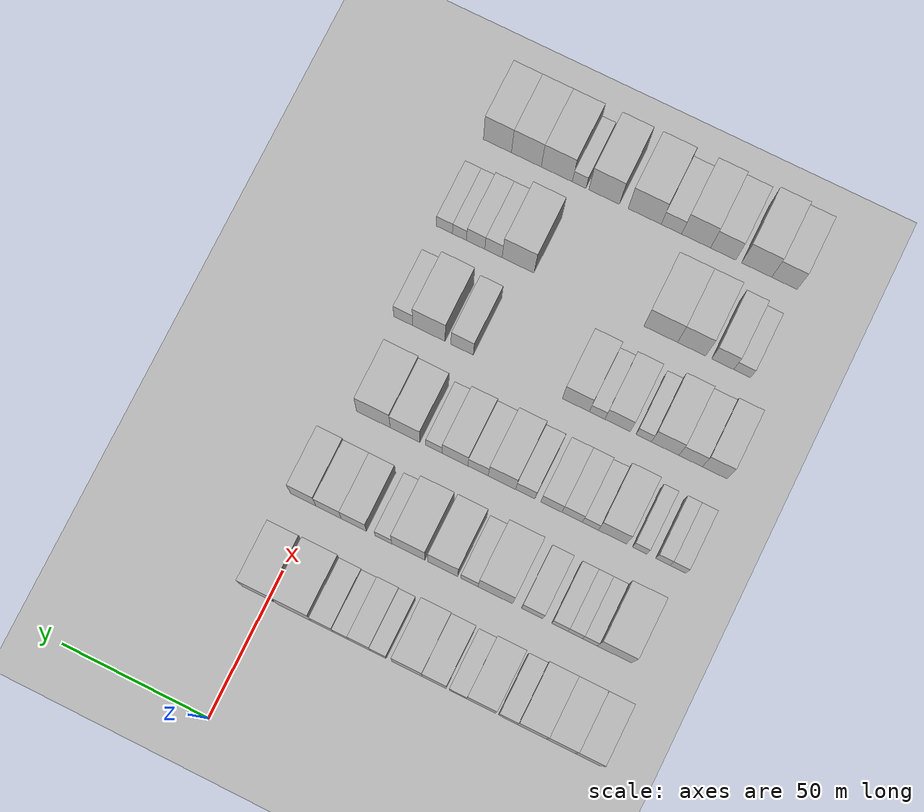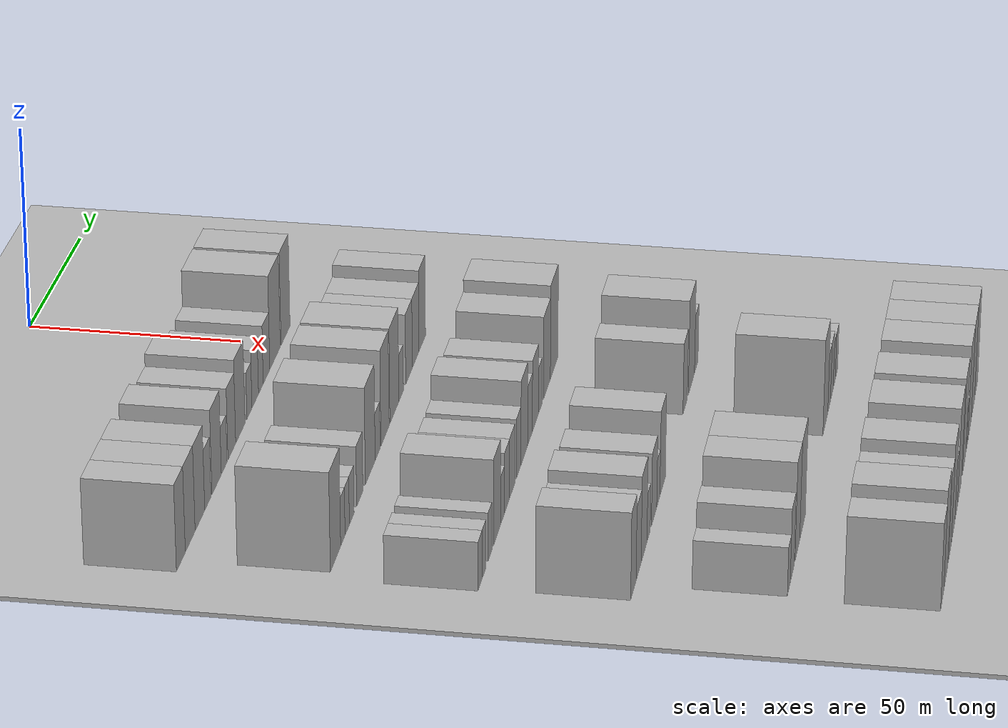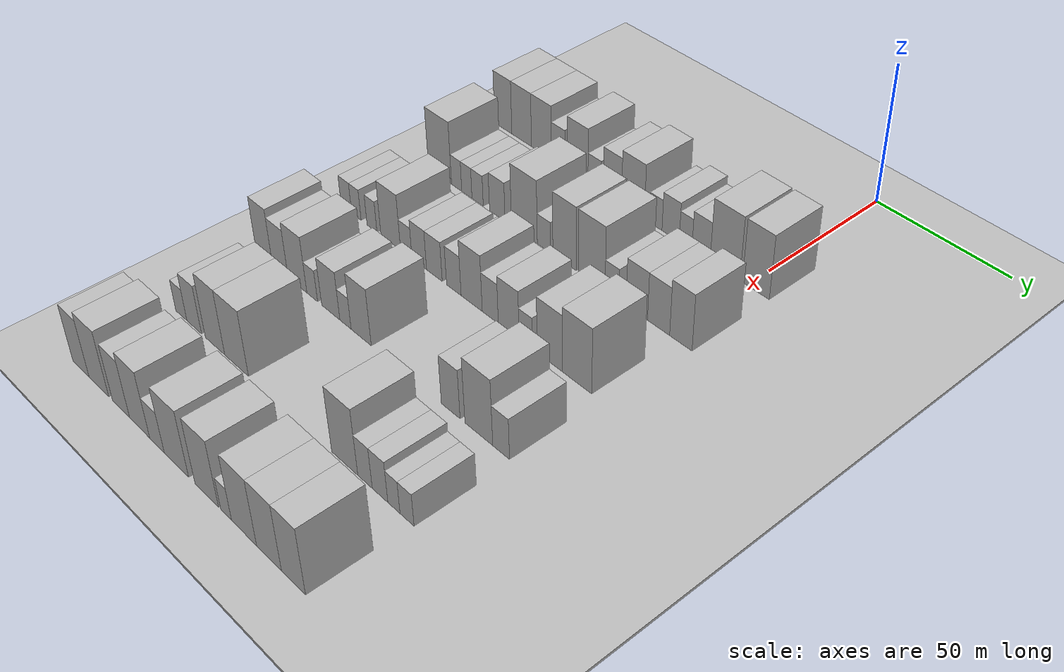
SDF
<sdf version="1.6">
 <world name="default">
  <include><name>ground_plane_1</name><uri>model://HANNAS_ground_plane</uri></include>
  <include>
   <name>ground_plane_2</name>
   <uri>model://HANNAS_ground_plane</uri>
   <pose>100 0 0  0 0 0</pose>
  </include>
  <model name="building_51">
   <static>1</static>
   <pose>50.0000 -108.0668 0 0.000000 0.000000 0.000000</pose>
   <link name="link">
    <pose>0 0 10.50 0 0 0</pose>
    <collision name="collision"><geometry><box><size>20.0000 8.6286 21.0000</size></box></geometry></collision>
    <visual name="visual">
     <cast_shadows>0</cast_shadows>
     <geometry><box><size>20.0000 8.6286 21.0000</size></box></geometry>
     <material>
      <script>
       <uri>model://HANNAS_wall/materials/scripts</uri>
       <uri>model://HANNAS_wall/materials/textures</uri>
       <name>vrc/HANNAS_wall</name>
      </script>
     </material>
    </visual>
   </link>
  </model>
  <model name="building_52">
   <static>1</static>
   <pose>50.0000 -98.9195 0 0.000000 0.000000 0.000000</pose>
   <link name="link">
    <pose>0 0 10.50 0 0 0</pose>
    <collision name="collision"><geometry><box><size>20.0000 9.6658 21.0000</size></box></geometry></collision>
    <visual name="visual">
     <cast_shadows>0</cast_shadows>
     <geometry><box><size>20.0000 9.6658 21.0000</size></box></geometry>
     <material>
      <script>
       <uri>model://HANNAS_wall/materials/scripts</uri>
       <uri>model://HANNAS_wall/materials/textures</uri>
       <name>vrc/HANNAS_wall</name>
      </script>
     </material>
    </visual>
   </link>
  </model>
  <model name="building_53">
   <static>1</static>
   <pose>50.0000 -89.2498 0 0.000000 0.000000 0.000000</pose>
   <link name="link">
    <pose>0 0 10.50 0 0 0</pose>
    <collision name="collision"><geometry><box><size>20.0000 9.6736 21.0000</size></box></geometry></collision>
    <visual name="visual">
     <cast_shadows>0</cast_shadows>
     <geometry><box><size>20.0000 9.6736 21.0000</size></box></geometry>
     <material>
      <script>
       <uri>model://HANNAS_wall/materials/scripts</uri>
       <uri>model://HANNAS_wall/materials/textures</uri>
       <name>vrc/HANNAS_wall</name>
      </script>
     </material>
    </visual>
   </link>
  </model>
  <model name="building_54">
   <static>1</static>
   <pose>50.0000 -81.2401 0 0.000000 0.000000 0.000000</pose>
   <link name="link">
    <pose>0 0 7.50 0 0 0</pose>
    <collision name="collision"><geometry><box><size>20.0000 6.3459 15.0000</size></box></geometry></collision>
    <visual name="visual">
     <cast_shadows>0</cast_shadows>
     <geometry><box><size>20.0000 6.3459 15.0000</size></box></geometry>
     <material>
      <script>
       <uri>model://HANNAS_wall/materials/scripts</uri>
       <uri>model://HANNAS_wall/materials/textures</uri>
       <name>vrc/HANNAS_wall</name>
      </script>
     </material>
    </visual>
   </link>
  </model>
  <model name="building_55">
   <static>1</static>
   <pose>50.0000 -72.2254 0 0.000000 0.000000 0.000000</pose>
   <link name="link">
    <pose>0 0 10.50 0 0 0</pose>
    <collision name="collision"><geometry><box><size>20.0000 9.6835 21.0000</size></box></geometry></collision>
    <visual name="visual">
     <cast_shadows>0</cast_shadows>
     <geometry><box><size>20.0000 9.6835 21.0000</size></box></geometry>
     <material>
      <script>
       <uri>model://HANNAS_wall/materials/scripts</uri>
       <uri>model://HANNAS_wall/materials/textures</uri>
       <name>vrc/HANNAS_wall</name>
      </script>
     </material>
    </visual>
   </link>
  </model>
  <model name="building_56">
   <static>1</static>
   <pose>50.0000 -64.3961 0 0.000000 0.000000 0.000000</pose>
   <link name="link">
    <pose>0 0 6.00 0 0 0</pose>
    <collision name="collision"><geometry><box><size>20.0000 5.9749 12.0000</size></box></geometry></collision>
    <visual name="visual">
     <cast_shadows>0</cast_shadows>
     <geometry><box><size>20.0000 5.9749 12.0000</size></box></geometry>
     <material>
      <script>
       <uri>model://HANNAS_wall/materials/scripts</uri>
       <uri>model://HANNAS_wall/materials/textures</uri>
       <name>vrc/HANNAS_wall</name>
      </script>
     </material>
    </visual>
   </link>
  </model>
  <model name="building_57">
   <static>1</static>
   <pose>50.0000 -56.3143 0 0.000000 0.000000 0.000000</pose>
   <link name="link">
    <pose>0 0 9.00 0 0 0</pose>
    <collision name="collision"><geometry><box><size>20.0000 8.1887 18.0000</size></box></geometry></collision>
    <visual name="visual">
     <cast_shadows>0</cast_shadows>
     <geometry><box><size>20.0000 8.1887 18.0000</size></box></geometry>
     <material>
      <script>
       <uri>model://HANNAS_wall/materials/scripts</uri>
       <uri>model://HANNAS_wall/materials/textures</uri>
       <name>vrc/HANNAS_wall</name>
      </script>
     </material>
    </visual>
   </link>
  </model>
  <model name="building_58">
   <static>1</static>
   <pose>50.0000 -47.1864 0 0.000000 0.000000 0.000000</pose>
   <link name="link">
    <pose>0 0 10.50 0 0 0</pose>
    <collision name="collision"><geometry><box><size>20.0000 10.0670 21.0000</size></box></geometry></collision>
    <visual name="visual">
     <cast_shadows>0</cast_shadows>
     <geometry><box><size>20.0000 10.0670 21.0000</size></box></geometry>
     <material>
      <script>
       <uri>model://HANNAS_wall/materials/scripts</uri>
       <uri>model://HANNAS_wall/materials/textures</uri>
       <name>vrc/HANNAS_wall</name>
      </script>
     </material>
    </visual>
   </link>
  </model>
  <model name="building_59">
   <static>1</static>
   <pose>50.0000 -37.3761 0 0.000000 0.000000 0.000000</pose>
   <link name="link">
    <pose>0 0 6.00 0 0 0</pose>
    <collision name="collision"><geometry><box><size>20.0000 5.5536 12.0000</size></box></geometry></collision>
    <visual name="visual">
     <cast_shadows>0</cast_shadows>
     <geometry><box><size>20.0000 5.5536 12.0000</size></box></geometry>
     <material>
      <script>
       <uri>model://HANNAS_wall/materials/scripts</uri>
       <uri>model://HANNAS_wall/materials/textures</uri>
       <name>vrc/HANNAS_wall</name>
      </script>
     </material>
    </visual>
   </link>
  </model>
  <model name="building_60">
   <static>1</static>
   <pose>50.0000 -30.9612 0 0.000000 0.000000 0.000000</pose>
   <link name="link">
    <pose>0 0 7.50 0 0 0</pose>
    <collision name="collision"><geometry><box><size>20.0000 7.2762 15.0000</size></box></geometry></collision>
    <visual name="visual">
     <cast_shadows>0</cast_shadows>
     <geometry><box><size>20.0000 7.2762 15.0000</size></box></geometry>
     <material>
      <script>
       <uri>model://HANNAS_wall/materials/scripts</uri>
       <uri>model://HANNAS_wall/materials/textures</uri>
       <name>vrc/HANNAS_wall</name>
      </script>
     </material>
    </visual>
   </link>
  </model>
  <model name="building_61">
   <static>1</static>
   <pose>50.0000 -24.6825 0 0.000000 0.000000 0.000000</pose>
   <link name="link">
    <pose>0 0 6.00 0 0 0</pose>
    <collision name="collision"><geometry><box><size>20.0000 5.2811 12.0000</size></box></geometry></collision>
    <visual name="visual">
     <cast_shadows>0</cast_shadows>
     <geometry><box><size>20.0000 5.2811 12.0000</size></box></geometry>
     <material>
      <script>
       <uri>model://HANNAS_wall/materials/scripts</uri>
       <uri>model://HANNAS_wall/materials/textures</uri>
       <name>vrc/HANNAS_wall</name>
      </script>
     </material>
    </visual>
   </link>
  </model>
  <model name="building_62">
   <static>1</static>
   <pose>50.0000 -18.3314 0 0.000000 0.000000 0.000000</pose>
   <link name="link">
    <pose>0 0 7.50 0 0 0</pose>
    <collision name="collision"><geometry><box><size>20.0000 7.4210 15.0000</size></box></geometry></collision>
    <visual name="visual">
     <cast_shadows>0</cast_shadows>
     <geometry><box><size>20.0000 7.4210 15.0000</size></box></geometry>
     <material>
      <script>
       <uri>model://HANNAS_wall/materials/scripts</uri>
       <uri>model://HANNAS_wall/materials/textures</uri>
       <name>vrc/HANNAS_wall</name>
      </script>
     </material>
    </visual>
   </link>
  </model>
  <model name="building_63">
   <static>1</static>
   <pose>50.0000 -8.6685 0 0.000000 0.000000 0.000000</pose>
   <link name="link">
    <pose>0 0 12.00 0 0 0</pose>
    <collision name="collision"><geometry><box><size>20.0000 11.9050 24.0000</size></box></geometry></collision>
    <visual name="visual">
     <cast_shadows>0</cast_shadows>
     <geometry><box><size>20.0000 11.9050 24.0000</size></box></geometry>
     <material>
      <script>
       <uri>model://HANNAS_wall/materials/scripts</uri>
       <uri>model://HANNAS_wall/materials/textures</uri>
       <name>vrc/HANNAS_wall</name>
      </script>
     </material>
    </visual>
   </link>
  </model>
  <model name="building_64">
   <static>1</static>
   <pose>50.0000 3.5360 0 0.000000 0.000000 0.000000</pose>
   <link name="link">
    <pose>0 0 12.00 0 0 0</pose>
    <collision name="collision"><geometry><box><size>20.0000 10.5040 24.0000</size></box></geometry></collision>
    <visual name="visual">
     <cast_shadows>0</cast_shadows>
     <geometry><box><size>20.0000 10.5040 24.0000</size></box></geometry>
     <material>
      <script>
       <uri>model://HANNAS_wall/materials/scripts</uri>
       <uri>model://HANNAS_wall/materials/textures</uri>
       <name>vrc/HANNAS_wall</name>
      </script>
     </material>
    </visual>
   </link>
  </model>
  <model name="building_177">
   <static>1</static>
   <pose>82.0000 -101.6393 0 0.000000 0.000000 0.000000</pose>
   <link name="link">
    <pose>0 0 12.00 0 0 0</pose>
    <collision name="collision"><geometry><box><size>20.0000 11.4980 24.0000</size></box></geometry></collision>
    <visual name="visual">
     <cast_shadows>0</cast_shadows>
     <geometry><box><size>20.0000 11.4980 24.0000</size></box></geometry>
     <material>
      <script>
       <uri>model://HANNAS_wall/materials/scripts</uri>
       <uri>model://HANNAS_wall/materials/textures</uri>
       <name>vrc/HANNAS_wall</name>
      </script>
     </material>
    </visual>
   </link>
  </model>
  <model name="building_178">
   <static>1</static>
   <pose>82.0000 -93.3824 0 0.000000 0.000000 0.000000</pose>
   <link name="link">
    <pose>0 0 6.00 0 0 0</pose>
    <collision name="collision"><geometry><box><size>20.0000 5.0158 12.0000</size></box></geometry></collision>
    <visual name="visual">
     <cast_shadows>0</cast_shadows>
     <geometry><box><size>20.0000 5.0158 12.0000</size></box></geometry>
     <material>
      <script>
       <uri>model://HANNAS_wall/materials/scripts</uri>
       <uri>model://HANNAS_wall/materials/textures</uri>
       <name>vrc/HANNAS_wall</name>
      </script>
     </material>
    </visual>
   </link>
  </model>
  <model name="building_179">
   <static>1</static>
   <pose>82.0000 -88.3939 0 0.000000 0.000000 0.000000</pose>
   <link name="link">
    <pose>0 0 6.00 0 0 0</pose>
    <collision name="collision"><geometry><box><size>20.0000 4.9613 12.0000</size></box></geometry></collision>
    <visual name="visual">
     <cast_shadows>0</cast_shadows>
     <geometry><box><size>20.0000 4.9613 12.0000</size></box></geometry>
     <material>
      <script>
       <uri>model://HANNAS_wall/materials/scripts</uri>
       <uri>model://HANNAS_wall/materials/textures</uri>
       <name>vrc/HANNAS_wall</name>
      </script>
     </material>
    </visual>
   </link>
  </model>
  <model name="building_180">
   <static>1</static>
   <pose>82.0000 -83.2018 0 0.000000 0.000000 0.000000</pose>
   <link name="link">
    <pose>0 0 6.00 0 0 0</pose>
    <collision name="collision"><geometry><box><size>20.0000 5.4230 12.0000</size></box></geometry></collision>
    <visual name="visual">
     <cast_shadows>0</cast_shadows>
     <geometry><box><size>20.0000 5.4230 12.0000</size></box></geometry>
     <material>
      <script>
       <uri>model://HANNAS_wall/materials/scripts</uri>
       <uri>model://HANNAS_wall/materials/textures</uri>
       <name>vrc/HANNAS_wall</name>
      </script>
     </material>
    </visual>
   </link>
  </model>
  <model name="building_181">
   <static>1</static>
   <pose>82.0000 -73.8542 0 0.000000 0.000000 0.000000</pose>
   <link name="link">
    <pose>0 0 7.50 0 0 0</pose>
    <collision name="collision"><geometry><box><size>20.0000 7.2721 15.0000</size></box></geometry></collision>
    <visual name="visual">
     <cast_shadows>0</cast_shadows>
     <geometry><box><size>20.0000 7.2721 15.0000</size></box></geometry>
     <material>
      <script>
       <uri>model://HANNAS_wall/materials/scripts</uri>
       <uri>model://HANNAS_wall/materials/textures</uri>
       <name>vrc/HANNAS_wall</name>
      </script>
     </material>
    </visual>
   </link>
  </model>
  <model name="building_182">
   <static>1</static>
   <pose>82.0000 -61.3323 0 0.000000 0.000000 0.000000</pose>
   <link name="link">
    <pose>0 0 12.00 0 0 0</pose>
    <collision name="collision"><geometry><box><size>20.0000 11.7718 24.0000</size></box></geometry></collision>
    <visual name="visual">
     <cast_shadows>0</cast_shadows>
     <geometry><box><size>20.0000 11.7718 24.0000</size></box></geometry>
     <material>
      <script>
       <uri>model://HANNAS_wall/materials/scripts</uri>
       <uri>model://HANNAS_wall/materials/textures</uri>
       <name>vrc/HANNAS_wall</name>
      </script>
     </material>
    </visual>
   </link>
  </model>
  <model name="building_183">
   <static>1</static>
   <pose>82.0000 -52.4739 0 0.000000 0.000000 0.000000</pose>
   <link name="link">
    <pose>0 0 6.00 0 0 0</pose>
    <collision name="collision"><geometry><box><size>20.0000 5.9449 12.0000</size></box></geometry></collision>
    <visual name="visual">
     <cast_shadows>0</cast_shadows>
     <geometry><box><size>20.0000 5.9449 12.0000</size></box></geometry>
     <material>
      <script>
       <uri>model://HANNAS_wall/materials/scripts</uri>
       <uri>model://HANNAS_wall/materials/textures</uri>
       <name>vrc/HANNAS_wall</name>
      </script>
     </material>
    </visual>
   </link>
  </model>
  <model name="building_184">
   <static>1</static>
   <pose>82.0000 -43.4128 0 0.000000 0.000000 0.000000</pose>
   <link name="link">
    <pose>0 0 12.00 0 0 0</pose>
    <collision name="collision"><geometry><box><size>20.0000 10.1772 24.0000</size></box></geometry></collision>
    <visual name="visual">
     <cast_shadows>0</cast_shadows>
     <geometry><box><size>20.0000 10.1772 24.0000</size></box></geometry>
     <material>
      <script>
       <uri>model://HANNAS_wall/materials/scripts</uri>
       <uri>model://HANNAS_wall/materials/textures</uri>
       <name>vrc/HANNAS_wall</name>
      </script>
     </material>
    </visual>
   </link>
  </model>
  <model name="building_185">
   <static>1</static>
   <pose>82.0000 -31.6812 0 0.000000 0.000000 0.000000</pose>
   <link name="link">
    <pose>0 0 12.00 0 0 0</pose>
    <collision name="collision"><geometry><box><size>20.0000 11.2860 24.0000</size></box></geometry></collision>
    <visual name="visual">
     <cast_shadows>0</cast_shadows>
     <geometry><box><size>20.0000 11.2860 24.0000</size></box></geometry>
     <material>
      <script>
       <uri>model://HANNAS_wall/materials/scripts</uri>
       <uri>model://HANNAS_wall/materials/textures</uri>
       <name>vrc/HANNAS_wall</name>
      </script>
     </material>
    </visual>
   </link>
  </model>
  <model name="building_186">
   <static>1</static>
   <pose>82.0000 -23.1558 0 0.000000 0.000000 0.000000</pose>
   <link name="link">
    <pose>0 0 6.00 0 0 0</pose>
    <collision name="collision"><geometry><box><size>20.0000 5.7648 12.0000</size></box></geometry></collision>
    <visual name="visual">
     <cast_shadows>0</cast_shadows>
     <geometry><box><size>20.0000 5.7648 12.0000</size></box></geometry>
     <material>
      <script>
       <uri>model://HANNAS_wall/materials/scripts</uri>
       <uri>model://HANNAS_wall/materials/textures</uri>
       <name>vrc/HANNAS_wall</name>
      </script>
     </material>
    </visual>
   </link>
  </model>
  <model name="building_187">
   <static>1</static>
   <pose>82.0000 -12.9511 0 0.000000 0.000000 0.000000</pose>
   <link name="link">
    <pose>0 0 9.00 0 0 0</pose>
    <collision name="collision"><geometry><box><size>20.0000 8.6446 18.0000</size></box></geometry></collision>
    <visual name="visual">
     <cast_shadows>0</cast_shadows>
     <geometry><box><size>20.0000 8.6446 18.0000</size></box></geometry>
     <material>
      <script>
       <uri>model://HANNAS_wall/materials/scripts</uri>
       <uri>model://HANNAS_wall/materials/textures</uri>
       <name>vrc/HANNAS_wall</name>
      </script>
     </material>
    </visual>
   </link>
  </model>
  <model name="building_188">
   <static>1</static>
   <pose>82.0000 -4.2556 0 0.000000 0.000000 0.000000</pose>
   <link name="link">
    <pose>0 0 9.00 0 0 0</pose>
    <collision name="collision"><geometry><box><size>20.0000 8.7465 18.0000</size></box></geometry></collision>
    <visual name="visual">
     <cast_shadows>0</cast_shadows>
     <geometry><box><size>20.0000 8.7465 18.0000</size></box></geometry>
     <material>
      <script>
       <uri>model://HANNAS_wall/materials/scripts</uri>
       <uri>model://HANNAS_wall/materials/textures</uri>
       <name>vrc/HANNAS_wall</name>
      </script>
     </material>
    </visual>
   </link>
  </model>
  <model name="building_189">
   <static>1</static>
   <pose>82.0000 4.4630 0 0.000000 0.000000 0.000000</pose>
   <link name="link">
    <pose>0 0 10.50 0 0 0</pose>
    <collision name="collision"><geometry><box><size>20.0000 8.6906 21.0000</size></box></geometry></collision>
    <visual name="visual">
     <cast_shadows>0</cast_shadows>
     <geometry><box><size>20.0000 8.6906 21.0000</size></box></geometry>
     <material>
      <script>
       <uri>model://HANNAS_wall/materials/scripts</uri>
       <uri>model://HANNAS_wall/materials/textures</uri>
       <name>vrc/HANNAS_wall</name>
      </script>
     </material>
    </visual>
   </link>
  </model>
  <model name="building_298">
   <static>1</static>
   <pose>114.0000 -107.8592 0 0.000000 0.000000 0.000000</pose>
   <link name="link">
    <pose>0 0 6.00 0 0 0</pose>
    <collision name="collision"><geometry><box><size>20.0000 5.3785 12.0000</size></box></geometry></collision>
    <visual name="visual">
     <cast_shadows>0</cast_shadows>
     <geometry><box><size>20.0000 5.3785 12.0000</size></box></geometry>
     <material>
      <script>
       <uri>model://HANNAS_wall/materials/scripts</uri>
       <uri>model://HANNAS_wall/materials/textures</uri>
       <name>vrc/HANNAS_wall</name>
      </script>
     </material>
    </visual>
   </link>
  </model>
  <model name="building_299">
   <static>1</static>
   <pose>114.0000 -102.7669 0 0.000000 0.000000 0.000000</pose>
   <link name="link">
    <pose>0 0 6.00 0 0 0</pose>
    <collision name="collision"><geometry><box><size>20.0000 4.8061 12.0000</size></box></geometry></collision>
    <visual name="visual">
     <cast_shadows>0</cast_shadows>
     <geometry><box><size>20.0000 4.8061 12.0000</size></box></geometry>
     <material>
      <script>
       <uri>model://HANNAS_wall/materials/scripts</uri>
       <uri>model://HANNAS_wall/materials/textures</uri>
       <name>vrc/HANNAS_wall</name>
      </script>
     </material>
    </visual>
   </link>
  </model>
  <model name="building_300">
   <static>1</static>
   <pose>114.0000 -94.9037 0 0.000000 0.000000 0.000000</pose>
   <link name="link">
    <pose>0 0 6.00 0 0 0</pose>
    <collision name="collision"><geometry><box><size>20.0000 4.9203 12.0000</size></box></geometry></collision>
    <visual name="visual">
     <cast_shadows>0</cast_shadows>
     <geometry><box><size>20.0000 4.9203 12.0000</size></box></geometry>
     <material>
      <script>
       <uri>model://HANNAS_wall/materials/scripts</uri>
       <uri>model://HANNAS_wall/materials/textures</uri>
       <name>vrc/HANNAS_wall</name>
      </script>
     </material>
    </visual>
   </link>
  </model>
  <model name="building_301">
   <static>1</static>
   <pose>114.0000 -85.6466 0 0.000000 0.000000 0.000000</pose>
   <link name="link">
    <pose>0 0 10.50 0 0 0</pose>
    <collision name="collision"><geometry><box><size>20.0000 9.5940 21.0000</size></box></geometry></collision>
    <visual name="visual">
     <cast_shadows>0</cast_shadows>
     <geometry><box><size>20.0000 9.5940 21.0000</size></box></geometry>
     <material>
      <script>
       <uri>model://HANNAS_wall/materials/scripts</uri>
       <uri>model://HANNAS_wall/materials/textures</uri>
       <name>vrc/HANNAS_wall</name>
      </script>
     </material>
    </visual>
   </link>
  </model>
  <model name="building_302">
   <static>1</static>
   <pose>114.0000 -78.1065 0 0.000000 0.000000 0.000000</pose>
   <link name="link">
    <pose>0 0 6.00 0 0 0</pose>
    <collision name="collision"><geometry><box><size>20.0000 5.4860 12.0000</size></box></geometry></collision>
    <visual name="visual">
     <cast_shadows>0</cast_shadows>
     <geometry><box><size>20.0000 5.4860 12.0000</size></box></geometry>
     <material>
      <script>
       <uri>model://HANNAS_wall/materials/scripts</uri>
       <uri>model://HANNAS_wall/materials/textures</uri>
       <name>vrc/HANNAS_wall</name>
      </script>
     </material>
    </visual>
   </link>
  </model>
  <model name="building_303">
   <static>1</static>
   <pose>114.0000 -71.9262 0 0.000000 0.000000 0.000000</pose>
   <link name="link">
    <pose>0 0 7.50 0 0 0</pose>
    <collision name="collision"><geometry><box><size>20.0000 6.8747 15.0000</size></box></geometry></collision>
    <visual name="visual">
     <cast_shadows>0</cast_shadows>
     <geometry><box><size>20.0000 6.8747 15.0000</size></box></geometry>
     <material>
      <script>
       <uri>model://HANNAS_wall/materials/scripts</uri>
       <uri>model://HANNAS_wall/materials/textures</uri>
       <name>vrc/HANNAS_wall</name>
      </script>
     </material>
    </visual>
   </link>
  </model>
  <model name="building_304">
   <static>1</static>
   <pose>114.0000 -64.8480 0 0.000000 0.000000 0.000000</pose>
   <link name="link">
    <pose>0 0 7.50 0 0 0</pose>
    <collision name="collision"><geometry><box><size>20.0000 7.2818 15.0000</size></box></geometry></collision>
    <visual name="visual">
     <cast_shadows>0</cast_shadows>
     <geometry><box><size>20.0000 7.2818 15.0000</size></box></geometry>
     <material>
      <script>
       <uri>model://HANNAS_wall/materials/scripts</uri>
       <uri>model://HANNAS_wall/materials/textures</uri>
       <name>vrc/HANNAS_wall</name>
      </script>
     </material>
    </visual>
   </link>
  </model>
  <model name="building_305">
   <static>1</static>
   <pose>114.0000 -55.9021 0 0.000000 0.000000 0.000000</pose>
   <link name="link">
    <pose>0 0 7.50 0 0 0</pose>
    <collision name="collision"><geometry><box><size>20.0000 6.6100 15.0000</size></box></geometry></collision>
    <visual name="visual">
     <cast_shadows>0</cast_shadows>
     <geometry><box><size>20.0000 6.6100 15.0000</size></box></geometry>
     <material>
      <script>
       <uri>model://HANNAS_wall/materials/scripts</uri>
       <uri>model://HANNAS_wall/materials/textures</uri>
       <name>vrc/HANNAS_wall</name>
      </script>
     </material>
    </visual>
   </link>
  </model>
  <model name="building_306">
   <static>1</static>
   <pose>114.0000 -47.8876 0 0.000000 0.000000 0.000000</pose>
   <link name="link">
    <pose>0 0 10.50 0 0 0</pose>
    <collision name="collision"><geometry><box><size>20.0000 9.4189 21.0000</size></box></geometry></collision>
    <visual name="visual">
     <cast_shadows>0</cast_shadows>
     <geometry><box><size>20.0000 9.4189 21.0000</size></box></geometry>
     <material>
      <script>
       <uri>model://HANNAS_wall/materials/scripts</uri>
       <uri>model://HANNAS_wall/materials/textures</uri>
       <name>vrc/HANNAS_wall</name>
      </script>
     </material>
    </visual>
   </link>
  </model>
  <model name="building_307">
   <static>1</static>
   <pose>114.0000 -39.6782 0 0.000000 0.000000 0.000000</pose>
   <link name="link">
    <pose>0 0 7.50 0 0 0</pose>
    <collision name="collision"><geometry><box><size>20.0000 6.9999 15.0000</size></box></geometry></collision>
    <visual name="visual">
     <cast_shadows>0</cast_shadows>
     <geometry><box><size>20.0000 6.9999 15.0000</size></box></geometry>
     <material>
      <script>
       <uri>model://HANNAS_wall/materials/scripts</uri>
       <uri>model://HANNAS_wall/materials/textures</uri>
       <name>vrc/HANNAS_wall</name>
      </script>
     </material>
    </visual>
   </link>
  </model>
  <model name="building_308">
   <static>1</static>
   <pose>114.0000 -31.7240 0 0.000000 0.000000 0.000000</pose>
   <link name="link">
    <pose>0 0 9.00 0 0 0</pose>
    <collision name="collision"><geometry><box><size>20.0000 8.9085 18.0000</size></box></geometry></collision>
    <visual name="visual">
     <cast_shadows>0</cast_shadows>
     <geometry><box><size>20.0000 8.9085 18.0000</size></box></geometry>
     <material>
      <script>
       <uri>model://HANNAS_wall/materials/scripts</uri>
       <uri>model://HANNAS_wall/materials/textures</uri>
       <name>vrc/HANNAS_wall</name>
      </script>
     </material>
    </visual>
   </link>
  </model>
  <model name="building_309">
   <static>1</static>
   <pose>114.0000 -24.4718 0 0.000000 0.000000 0.000000</pose>
   <link name="link">
    <pose>0 0 6.00 0 0 0</pose>
    <collision name="collision"><geometry><box><size>20.0000 5.5958 12.0000</size></box></geometry></collision>
    <visual name="visual">
     <cast_shadows>0</cast_shadows>
     <geometry><box><size>20.0000 5.5958 12.0000</size></box></geometry>
     <material>
      <script>
       <uri>model://HANNAS_wall/materials/scripts</uri>
       <uri>model://HANNAS_wall/materials/textures</uri>
       <name>vrc/HANNAS_wall</name>
      </script>
     </material>
    </visual>
   </link>
  </model>
  <model name="building_310">
   <static>1</static>
   <pose>114.0000 -14.5248 0 0.000000 0.000000 0.000000</pose>
   <link name="link">
    <pose>0 0 10.50 0 0 0</pose>
    <collision name="collision"><geometry><box><size>20.0000 10.2983 21.0000</size></box></geometry></collision>
    <visual name="visual">
     <cast_shadows>0</cast_shadows>
     <geometry><box><size>20.0000 10.2983 21.0000</size></box></geometry>
     <material>
      <script>
       <uri>model://HANNAS_wall/materials/scripts</uri>
       <uri>model://HANNAS_wall/materials/textures</uri>
       <name>vrc/HANNAS_wall</name>
      </script>
     </material>
    </visual>
   </link>
  </model>
  <model name="building_311">
   <static>1</static>
   <pose>114.0000 -3.5375 0 0.000000 0.000000 0.000000</pose>
   <link name="link">
    <pose>0 0 12.00 0 0 0</pose>
    <collision name="collision"><geometry><box><size>20.0000 11.6762 24.0000</size></box></geometry></collision>
    <visual name="visual">
     <cast_shadows>0</cast_shadows>
     <geometry><box><size>20.0000 11.6762 24.0000</size></box></geometry>
     <material>
      <script>
       <uri>model://HANNAS_wall/materials/scripts</uri>
       <uri>model://HANNAS_wall/materials/textures</uri>
       <name>vrc/HANNAS_wall</name>
      </script>
     </material>
    </visual>
   </link>
  </model>
  <model name="building_420">
   <static>1</static>
   <pose>146.0000 -105.2914 0 0.000000 0.000000 0.000000</pose>
   <link name="link">
    <pose>0 0 10.50 0 0 0</pose>
    <collision name="collision"><geometry><box><size>20.0000 8.4048 21.0000</size></box></geometry></collision>
    <visual name="visual">
     <cast_shadows>0</cast_shadows>
     <geometry><box><size>20.0000 8.4048 21.0000</size></box></geometry>
     <material>
      <script>
       <uri>model://HANNAS_wall/materials/scripts</uri>
       <uri>model://HANNAS_wall/materials/textures</uri>
       <name>vrc/HANNAS_wall</name>
      </script>
     </material>
    </visual>
   </link>
  </model>
  <model name="building_421">
   <static>1</static>
   <pose>146.0000 -97.0885 0 0.000000 0.000000 0.000000</pose>
   <link name="link">
    <pose>0 0 9.00 0 0 0</pose>
    <collision name="collision"><geometry><box><size>20.0000 8.0010 18.0000</size></box></geometry></collision>
    <visual name="visual">
     <cast_shadows>0</cast_shadows>
     <geometry><box><size>20.0000 8.0010 18.0000</size></box></geometry>
     <material>
      <script>
       <uri>model://HANNAS_wall/materials/scripts</uri>
       <uri>model://HANNAS_wall/materials/textures</uri>
       <name>vrc/HANNAS_wall</name>
      </script>
     </material>
    </visual>
   </link>
  </model>
  <model name="building_422">
   <static>1</static>
   <pose>146.0000 -88.3816 0 0.000000 0.000000 0.000000</pose>
   <link name="link">
    <pose>0 0 10.50 0 0 0</pose>
    <collision name="collision"><geometry><box><size>20.0000 9.4129 21.0000</size></box></geometry></collision>
    <visual name="visual">
     <cast_shadows>0</cast_shadows>
     <geometry><box><size>20.0000 9.4129 21.0000</size></box></geometry>
     <material>
      <script>
       <uri>model://HANNAS_wall/materials/scripts</uri>
       <uri>model://HANNAS_wall/materials/textures</uri>
       <name>vrc/HANNAS_wall</name>
      </script>
     </material>
    </visual>
   </link>
  </model>
  <model name="building_423">
   <static>1</static>
   <pose>146.0000 -81.0553 0 0.000000 0.000000 0.000000</pose>
   <link name="link">
    <pose>0 0 6.00 0 0 0</pose>
    <collision name="collision"><geometry><box><size>20.0000 5.2399 12.0000</size></box></geometry></collision>
    <visual name="visual">
     <cast_shadows>0</cast_shadows>
     <geometry><box><size>20.0000 5.2399 12.0000</size></box></geometry>
     <material>
      <script>
       <uri>model://HANNAS_wall/materials/scripts</uri>
       <uri>model://HANNAS_wall/materials/textures</uri>
       <name>vrc/HANNAS_wall</name>
      </script>
     </material>
    </visual>
   </link>
  </model>
  <model name="building_424">
   <static>1</static>
   <pose>146.0000 -72.0691 0 0.000000 0.000000 0.000000</pose>
   <link name="link">
    <pose>0 0 9.00 0 0 0</pose>
    <collision name="collision"><geometry><box><size>20.0000 8.7323 18.0000</size></box></geometry></collision>
    <visual name="visual">
     <cast_shadows>0</cast_shadows>
     <geometry><box><size>20.0000 8.7323 18.0000</size></box></geometry>
     <material>
      <script>
       <uri>model://HANNAS_wall/materials/scripts</uri>
       <uri>model://HANNAS_wall/materials/textures</uri>
       <name>vrc/HANNAS_wall</name>
      </script>
     </material>
    </visual>
   </link>
  </model>
  <model name="building_425">
   <static>1</static>
   <pose>146.0000 -65.0534 0 0.000000 0.000000 0.000000</pose>
   <link name="link">
    <pose>0 0 6.00 0 0 0</pose>
    <collision name="collision"><geometry><box><size>20.0000 5.2991 12.0000</size></box></geometry></collision>
    <visual name="visual">
     <cast_shadows>0</cast_shadows>
     <geometry><box><size>20.0000 5.2991 12.0000</size></box></geometry>
     <material>
      <script>
       <uri>model://HANNAS_wall/materials/scripts</uri>
       <uri>model://HANNAS_wall/materials/textures</uri>
       <name>vrc/HANNAS_wall</name>
      </script>
     </material>
    </visual>
   </link>
  </model>
  <model name="building_426">
   <static>1</static>
   <pose>146.0000 -57.7483 0 0.000000 0.000000 0.000000</pose>
   <link name="link">
    <pose>0 0 10.50 0 0 0</pose>
    <collision name="collision"><geometry><box><size>20.0000 9.3112 21.0000</size></box></geometry></collision>
    <visual name="visual">
     <cast_shadows>0</cast_shadows>
     <geometry><box><size>20.0000 9.3112 21.0000</size></box></geometry>
     <material>
      <script>
       <uri>model://HANNAS_wall/materials/scripts</uri>
       <uri>model://HANNAS_wall/materials/textures</uri>
       <name>vrc/HANNAS_wall</name>
      </script>
     </material>
    </visual>
   </link>
  </model>
  <model name="building_427">
   <static>1</static>
   <pose>146.0000 -18.3616 0 0.000000 0.000000 0.000000</pose>
   <link name="link">
    <pose>0 0 9.00 0 0 0</pose>
    <collision name="collision"><geometry><box><size>20.0000 7.8207 18.0000</size></box></geometry></collision>
    <visual name="visual">
     <cast_shadows>0</cast_shadows>
     <geometry><box><size>20.0000 7.8207 18.0000</size></box></geometry>
     <material>
      <script>
       <uri>model://HANNAS_wall/materials/scripts</uri>
       <uri>model://HANNAS_wall/materials/textures</uri>
       <name>vrc/HANNAS_wall</name>
      </script>
     </material>
    </visual>
   </link>
  </model>
  <model name="building_428">
   <static>1</static>
   <pose>146.0000 -6.8158 0 0.000000 0.000000 0.000000</pose>
   <link name="link">
    <pose>0 0 12.00 0 0 0</pose>
    <collision name="collision"><geometry><box><size>20.0000 11.2709 24.0000</size></box></geometry></collision>
    <visual name="visual">
     <cast_shadows>0</cast_shadows>
     <geometry><box><size>20.0000 11.2709 24.0000</size></box></geometry>
     <material>
      <script>
       <uri>model://HANNAS_wall/materials/scripts</uri>
       <uri>model://HANNAS_wall/materials/textures</uri>
       <name>vrc/HANNAS_wall</name>
      </script>
     </material>
    </visual>
   </link>
  </model>
  <model name="building_429">
   <static>1</static>
   <pose>146.0000 2.1321 0 0.000000 0.000000 0.000000</pose>
   <link name="link">
    <pose>0 0 7.50 0 0 0</pose>
    <collision name="collision"><geometry><box><size>20.0000 6.6250 15.0000</size></box></geometry></collision>
    <visual name="visual">
     <cast_shadows>0</cast_shadows>
     <geometry><box><size>20.0000 6.6250 15.0000</size></box></geometry>
     <material>
      <script>
       <uri>model://HANNAS_wall/materials/scripts</uri>
       <uri>model://HANNAS_wall/materials/textures</uri>
       <name>vrc/HANNAS_wall</name>
      </script>
     </material>
    </visual>
   </link>
  </model>
  <model name="building_542">
   <static>1</static>
   <pose>178.0000 -99.7588 0 0.000000 0.000000 0.000000</pose>
   <link name="link">
    <pose>0 0 6.00 0 0 0</pose>
    <collision name="collision"><geometry><box><size>20.0000 5.7997 12.0000</size></box></geometry></collision>
    <visual name="visual">
     <cast_shadows>0</cast_shadows>
     <geometry><box><size>20.0000 5.7997 12.0000</size></box></geometry>
     <material>
      <script>
       <uri>model://HANNAS_wall/materials/scripts</uri>
       <uri>model://HANNAS_wall/materials/textures</uri>
       <name>vrc/HANNAS_wall</name>
      </script>
     </material>
    </visual>
   </link>
  </model>
  <model name="building_543">
   <static>1</static>
   <pose>178.0000 -93.0620 0 0.000000 0.000000 0.000000</pose>
   <link name="link">
    <pose>0 0 9.00 0 0 0</pose>
    <collision name="collision"><geometry><box><size>20.0000 7.5940 18.0000</size></box></geometry></collision>
    <visual name="visual">
     <cast_shadows>0</cast_shadows>
     <geometry><box><size>20.0000 7.5940 18.0000</size></box></geometry>
     <material>
      <script>
       <uri>model://HANNAS_wall/materials/scripts</uri>
       <uri>model://HANNAS_wall/materials/textures</uri>
       <name>vrc/HANNAS_wall</name>
      </script>
     </material>
    </visual>
   </link>
  </model>
  <model name="building_544">
   <static>1</static>
   <pose>178.0000 -82.4060 0 0.000000 0.000000 0.000000</pose>
   <link name="link">
    <pose>0 0 12.00 0 0 0</pose>
    <collision name="collision"><geometry><box><size>20.0000 9.7179 24.0000</size></box></geometry></collision>
    <visual name="visual">
     <cast_shadows>0</cast_shadows>
     <geometry><box><size>20.0000 9.7179 24.0000</size></box></geometry>
     <material>
      <script>
       <uri>model://HANNAS_wall/materials/scripts</uri>
       <uri>model://HANNAS_wall/materials/textures</uri>
       <name>vrc/HANNAS_wall</name>
      </script>
     </material>
    </visual>
   </link>
  </model>
  <model name="building_545">
   <static>1</static>
   <pose>178.0000 -71.7220 0 0.000000 0.000000 0.000000</pose>
   <link name="link">
    <pose>0 0 12.00 0 0 0</pose>
    <collision name="collision"><geometry><box><size>20.0000 11.6501 24.0000</size></box></geometry></collision>
    <visual name="visual">
     <cast_shadows>0</cast_shadows>
     <geometry><box><size>20.0000 11.6501 24.0000</size></box></geometry>
     <material>
      <script>
       <uri>model://HANNAS_wall/materials/scripts</uri>
       <uri>model://HANNAS_wall/materials/textures</uri>
       <name>vrc/HANNAS_wall</name>
      </script>
     </material>
    </visual>
   </link>
  </model>
  <model name="building_546">
   <static>1</static>
   <pose>178.0000 -22.1316 0 0.000000 0.000000 0.000000</pose>
   <link name="link">
    <pose>0 0 12.00 0 0 0</pose>
    <collision name="collision"><geometry><box><size>20.0000 11.1769 24.0000</size></box></geometry></collision>
    <visual name="visual">
     <cast_shadows>0</cast_shadows>
     <geometry><box><size>20.0000 11.1769 24.0000</size></box></geometry>
     <material>
      <script>
       <uri>model://HANNAS_wall/materials/scripts</uri>
       <uri>model://HANNAS_wall/materials/textures</uri>
       <name>vrc/HANNAS_wall</name>
      </script>
     </material>
    </visual>
   </link>
  </model>
  <model name="building_547">
   <static>1</static>
   <pose>178.0000 -13.5147 0 0.000000 0.000000 0.000000</pose>
   <link name="link">
    <pose>0 0 7.50 0 0 0</pose>
    <collision name="collision"><geometry><box><size>20.0000 6.0569 15.0000</size></box></geometry></collision>
    <visual name="visual">
     <cast_shadows>0</cast_shadows>
     <geometry><box><size>20.0000 6.0569 15.0000</size></box></geometry>
     <material>
      <script>
       <uri>model://HANNAS_wall/materials/scripts</uri>
       <uri>model://HANNAS_wall/materials/textures</uri>
       <name>vrc/HANNAS_wall</name>
      </script>
     </material>
    </visual>
   </link>
  </model>
  <model name="building_548">
   <static>1</static>
   <pose>178.0000 -7.2792 0 0.000000 0.000000 0.000000</pose>
   <link name="link">
    <pose>0 0 7.50 0 0 0</pose>
    <collision name="collision"><geometry><box><size>20.0000 6.4141 15.0000</size></box></geometry></collision>
    <visual name="visual">
     <cast_shadows>0</cast_shadows>
     <geometry><box><size>20.0000 6.4141 15.0000</size></box></geometry>
     <material>
      <script>
       <uri>model://HANNAS_wall/materials/scripts</uri>
       <uri>model://HANNAS_wall/materials/textures</uri>
       <name>vrc/HANNAS_wall</name>
      </script>
     </material>
    </visual>
   </link>
  </model>
  <model name="building_549">
   <static>1</static>
   <pose>178.0000 -1.6125 0 0.000000 0.000000 0.000000</pose>
   <link name="link">
    <pose>0 0 6.00 0 0 0</pose>
    <collision name="collision"><geometry><box><size>20.0000 4.9192 12.0000</size></box></geometry></collision>
    <visual name="visual">
     <cast_shadows>0</cast_shadows>
     <geometry><box><size>20.0000 4.9192 12.0000</size></box></geometry>
     <material>
      <script>
       <uri>model://HANNAS_wall/materials/scripts</uri>
       <uri>model://HANNAS_wall/materials/textures</uri>
       <name>vrc/HANNAS_wall</name>
      </script>
     </material>
    </visual>
   </link>
  </model>
  <model name="building_550">
   <static>1</static>
   <pose>178.0000 3.6483 0 0.000000 0.000000 0.000000</pose>
   <link name="link">
    <pose>0 0 6.00 0 0 0</pose>
    <collision name="collision"><geometry><box><size>20.0000 5.6024 12.0000</size></box></geometry></collision>
    <visual name="visual">
     <cast_shadows>0</cast_shadows>
     <geometry><box><size>20.0000 5.6024 12.0000</size></box></geometry>
     <material>
      <script>
       <uri>model://HANNAS_wall/materials/scripts</uri>
       <uri>model://HANNAS_wall/materials/textures</uri>
       <name>vrc/HANNAS_wall</name>
      </script>
     </material>
    </visual>
   </link>
  </model>
  <model name="building_656">
   <static>1</static>
   <pose>210.0000 -99.4751 0 0.000000 0.000000 0.000000</pose>
   <link name="link">
    <pose>0 0 10.50 0 0 0</pose>
    <collision name="collision"><geometry><box><size>20.0000 8.8311 21.0000</size></box></geometry></collision>
    <visual name="visual">
     <cast_shadows>0</cast_shadows>
     <geometry><box><size>20.0000 8.8311 21.0000</size></box></geometry>
     <material>
      <script>
       <uri>model://HANNAS_wall/materials/scripts</uri>
       <uri>model://HANNAS_wall/materials/textures</uri>
       <name>vrc/HANNAS_wall</name>
      </script>
     </material>
    </visual>
   </link>
  </model>
  <model name="building_657">
   <static>1</static>
   <pose>210.0000 -89.8503 0 0.000000 0.000000 0.000000</pose>
   <link name="link">
    <pose>0 0 12.00 0 0 0</pose>
    <collision name="collision"><geometry><box><size>20.0000 10.4185 24.0000</size></box></geometry></collision>
    <visual name="visual">
     <cast_shadows>0</cast_shadows>
     <geometry><box><size>20.0000 10.4185 24.0000</size></box></geometry>
     <material>
      <script>
       <uri>model://HANNAS_wall/materials/scripts</uri>
       <uri>model://HANNAS_wall/materials/textures</uri>
       <name>vrc/HANNAS_wall</name>
      </script>
     </material>
    </visual>
   </link>
  </model>
  <model name="building_658">
   <static>1</static>
   <pose>210.0000 -78.2620 0 0.000000 0.000000 0.000000</pose>
   <link name="link">
    <pose>0 0 10.50 0 0 0</pose>
    <collision name="collision"><geometry><box><size>20.0000 8.7580 21.0000</size></box></geometry></collision>
    <visual name="visual">
     <cast_shadows>0</cast_shadows>
     <geometry><box><size>20.0000 8.7580 21.0000</size></box></geometry>
     <material>
      <script>
       <uri>model://HANNAS_wall/materials/scripts</uri>
       <uri>model://HANNAS_wall/materials/textures</uri>
       <name>vrc/HANNAS_wall</name>
      </script>
     </material>
    </visual>
   </link>
  </model>
  <model name="building_659">
   <static>1</static>
   <pose>210.0000 -68.8589 0 0.000000 0.000000 0.000000</pose>
   <link name="link">
    <pose>0 0 12.00 0 0 0</pose>
    <collision name="collision"><geometry><box><size>20.0000 10.0482 24.0000</size></box></geometry></collision>
    <visual name="visual">
     <cast_shadows>0</cast_shadows>
     <geometry><box><size>20.0000 10.0482 24.0000</size></box></geometry>
     <material>
      <script>
       <uri>model://HANNAS_wall/materials/scripts</uri>
       <uri>model://HANNAS_wall/materials/textures</uri>
       <name>vrc/HANNAS_wall</name>
      </script>
     </material>
    </visual>
   </link>
  </model>
  <model name="building_660">
   <static>1</static>
   <pose>210.0000 -60.2786 0 0.000000 0.000000 0.000000</pose>
   <link name="link">
    <pose>0 0 7.50 0 0 0</pose>
    <collision name="collision"><geometry><box><size>20.0000 7.1123 15.0000</size></box></geometry></collision>
    <visual name="visual">
     <cast_shadows>0</cast_shadows>
     <geometry><box><size>20.0000 7.1123 15.0000</size></box></geometry>
     <material>
      <script>
       <uri>model://HANNAS_wall/materials/scripts</uri>
       <uri>model://HANNAS_wall/materials/textures</uri>
       <name>vrc/HANNAS_wall</name>
      </script>
     </material>
    </visual>
   </link>
  </model>
  <model name="building_661">
   <static>1</static>
   <pose>210.0000 -50.9325 0 0.000000 0.000000 0.000000</pose>
   <link name="link">
    <pose>0 0 12.00 0 0 0</pose>
    <collision name="collision"><geometry><box><size>20.0000 11.5798 24.0000</size></box></geometry></collision>
    <visual name="visual">
     <cast_shadows>0</cast_shadows>
     <geometry><box><size>20.0000 11.5798 24.0000</size></box></geometry>
     <material>
      <script>
       <uri>model://HANNAS_wall/materials/scripts</uri>
       <uri>model://HANNAS_wall/materials/textures</uri>
       <name>vrc/HANNAS_wall</name>
      </script>
     </material>
    </visual>
   </link>
  </model>
  <model name="building_662">
   <static>1</static>
   <pose>210.0000 -36.7576 0 0.000000 0.000000 0.000000</pose>
   <link name="link">
    <pose>0 0 12.00 0 0 0</pose>
    <collision name="collision"><geometry><box><size>20.0000 10.7700 24.0000</size></box></geometry></collision>
    <visual name="visual">
     <cast_shadows>0</cast_shadows>
     <geometry><box><size>20.0000 10.7700 24.0000</size></box></geometry>
     <material>
      <script>
       <uri>model://HANNAS_wall/materials/scripts</uri>
       <uri>model://HANNAS_wall/materials/textures</uri>
       <name>vrc/HANNAS_wall</name>
      </script>
     </material>
    </visual>
   </link>
  </model>
  <model name="building_663">
   <static>1</static>
   <pose>210.0000 -27.9662 0 0.000000 0.000000 0.000000</pose>
   <link name="link">
    <pose>0 0 6.00 0 0 0</pose>
    <collision name="collision"><geometry><box><size>20.0000 4.8126 12.0000</size></box></geometry></collision>
    <visual name="visual">
     <cast_shadows>0</cast_shadows>
     <geometry><box><size>20.0000 4.8126 12.0000</size></box></geometry>
     <material>
      <script>
       <uri>model://HANNAS_wall/materials/scripts</uri>
       <uri>model://HANNAS_wall/materials/textures</uri>
       <name>vrc/HANNAS_wall</name>
      </script>
     </material>
    </visual>
   </link>
  </model>
  <model name="building_664">
   <static>1</static>
   <pose>210.0000 -20.1055 0 0.000000 0.000000 0.000000</pose>
   <link name="link">
    <pose>0 0 12.00 0 0 0</pose>
    <collision name="collision"><geometry><box><size>20.0000 10.9088 24.0000</size></box></geometry></collision>
    <visual name="visual">
     <cast_shadows>0</cast_shadows>
     <geometry><box><size>20.0000 10.9088 24.0000</size></box></geometry>
     <material>
      <script>
       <uri>model://HANNAS_wall/materials/scripts</uri>
       <uri>model://HANNAS_wall/materials/textures</uri>
       <name>vrc/HANNAS_wall</name>
      </script>
     </material>
    </visual>
   </link>
  </model>
  <model name="building_665">
   <static>1</static>
   <pose>210.0000 -9.3968 0 0.000000 0.000000 0.000000</pose>
   <link name="link">
    <pose>0 0 12.00 0 0 0</pose>
    <collision name="collision"><geometry><box><size>20.0000 10.5086 24.0000</size></box></geometry></collision>
    <visual name="visual">
     <cast_shadows>0</cast_shadows>
     <geometry><box><size>20.0000 10.5086 24.0000</size></box></geometry>
     <material>
      <script>
       <uri>model://HANNAS_wall/materials/scripts</uri>
       <uri>model://HANNAS_wall/materials/textures</uri>
       <name>vrc/HANNAS_wall</name>
      </script>
     </material>
    </visual>
   </link>
  </model>
  <model name="building_666">
   <static>1</static>
   <pose>210.0000 0.8006 0 0.000000 0.000000 0.000000</pose>
   <link name="link">
    <pose>0 0 12.00 0 0 0</pose>
    <collision name="collision"><geometry><box><size>20.0000 9.8862 24.0000</size></box></geometry></collision>
    <visual name="visual">
     <cast_shadows>0</cast_shadows>
     <geometry><box><size>20.0000 9.8862 24.0000</size></box></geometry>
     <material>
      <script>
       <uri>model://HANNAS_wall/materials/scripts</uri>
       <uri>model://HANNAS_wall/materials/textures</uri>
       <name>vrc/HANNAS_wall</name>
      </script>
     </material>
    </visual>
   </link>
  </model>
 </world>
</sdf>
